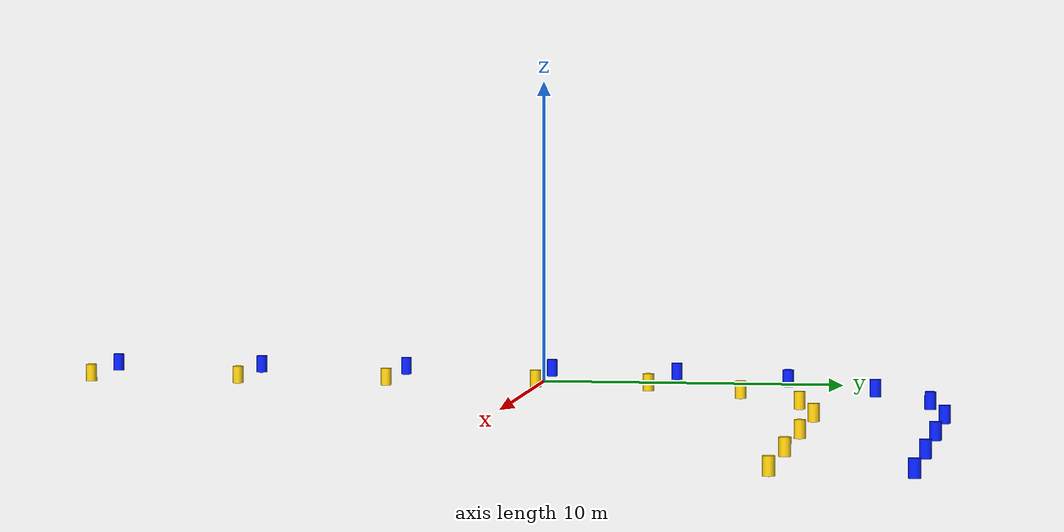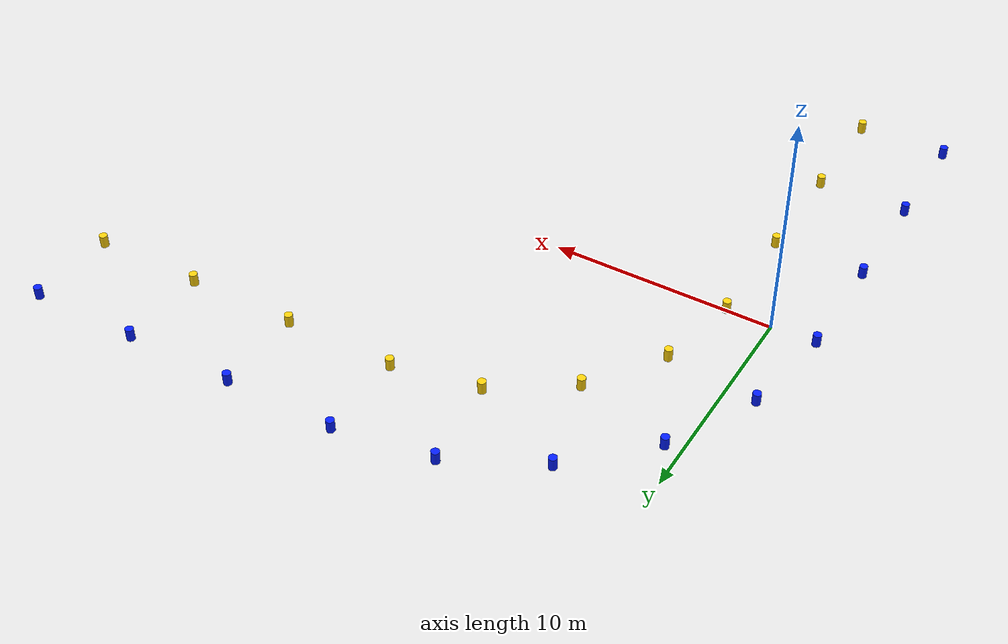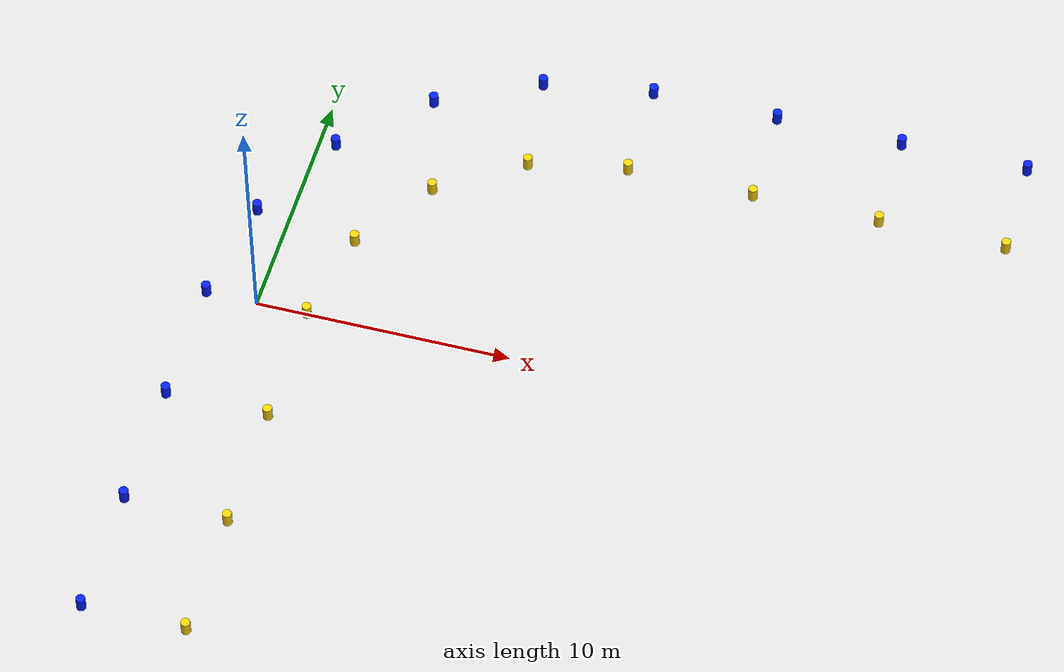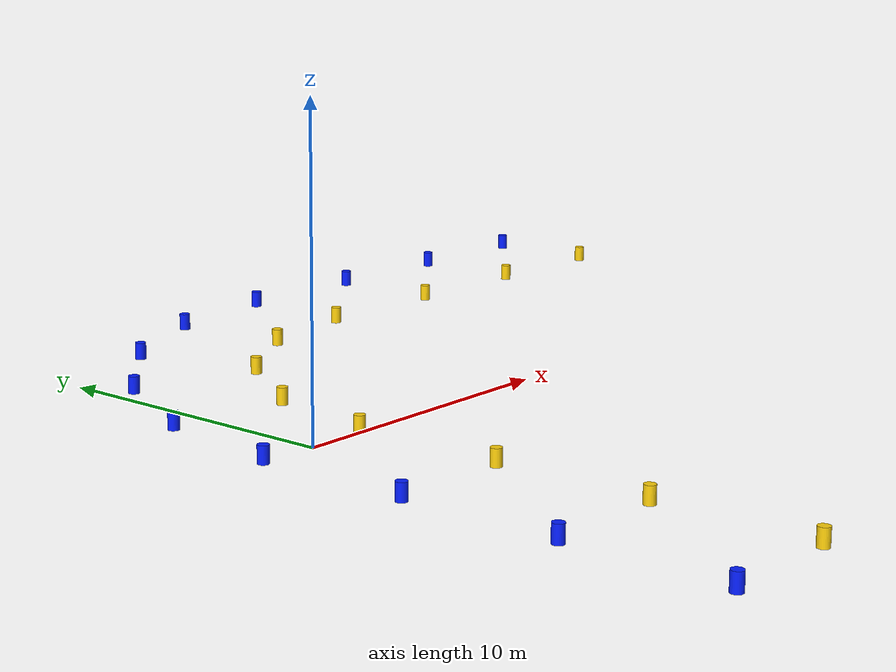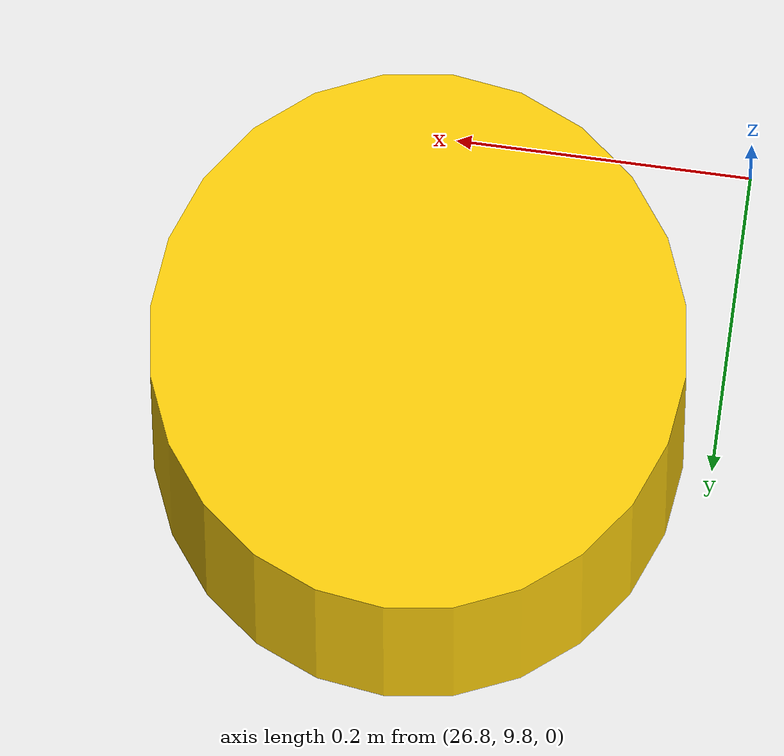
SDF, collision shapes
<?xml version='1.0'?>
<sdf version='1.9'>
  <model name='shixi'>

    <include>
      <pose>-2.0 -15.0 0 0 0 0</pose>
      <uri>model://blue_cone</uri>
      <name>blue_cone_0</name>
    </include>
    <include>
      <pose>2.0 -15.0 0 0 0 0</pose>
      <uri>model://yellow_cone</uri>
      <name>yellow_cone_0</name>
    </include>

    <include>
      <pose>-2.0 -10.0 0 0 0 0</pose>
      <uri>model://blue_cone</uri>
      <name>blue_cone_1</name>
    </include>
    <include>
      <pose>2.0 -10.0 0 0 0 0</pose>
      <uri>model://yellow_cone</uri>
      <name>yellow_cone_1</name>
    </include>

    <include>
      <pose>-2.0 -5.0 0 0 0 0</pose>
      <uri>model://blue_cone</uri>
      <name>blue_cone_2</name>
    </include>
    <include>
      <pose>2.0 -5.0 0 0 0 0</pose>
      <uri>model://yellow_cone</uri>
      <name>yellow_cone_2</name>
    </include>

    <include>
      <pose>-2.0 0.0 0 0 0 0</pose>
      <uri>model://blue_cone</uri>
      <name>blue_cone_3</name>
    </include>
    <include>
      <pose>2.0 0.0 0 0 0 0</pose>
      <uri>model://yellow_cone</uri>
      <name>yellow_cone_3</name>
    </include>

    <include>
      <pose>-1.31 4.32 0 0 0 0</pose>
      <uri>model://blue_cone</uri>
      <name>blue_cone_4</name>
    </include>
    <include>
      <pose>0.68 8.23 0 0 0 0</pose>
      <uri>model://blue_cone</uri>
      <name>blue_cone_5</name>
    </include>
    <include>
      <pose>3.77 11.32 0 0 0 0</pose>
      <uri>model://blue_cone</uri>
      <name>blue_cone_6</name>
    </include>
    <include>
      <pose>7.68 13.31 0 0 0 0</pose>
      <uri>model://blue_cone</uri>
      <name>blue_cone_7</name>
    </include>
    <include>
      <pose>12.0 14.0 0 0 0 0</pose>
      <uri>model://blue_cone</uri>
      <name>blue_cone_8</name>
    </include>

    <include>
      <pose>2.76 3.83 0 0 0 0</pose>
      <uri>model://yellow_cone</uri>
      <name>yellow_cone_4</name>
    </include>
    <include>
      <pose>4.93 7.07 0 0 0 0</pose>
      <uri>model://yellow_cone</uri>
      <name>yellow_cone_5</name>
    </include>
    <include>
      <pose>8.17 9.24 0 0 0 0</pose>
      <uri>model://yellow_cone</uri>
      <name>yellow_cone_6</name>
    </include>
    <include>
      <pose>12.0 10.0 0 0 0 0</pose>
      <uri>model://yellow_cone</uri>
      <name>yellow_cone_7</name>
    </include>

    <include>
      <pose>17.0 14.0 0 0 0 0</pose>
      <uri>model://blue_cone</uri>
      <name>blue_cone_9</name>
    </include>
    <include>
      <pose>17.0 10.0 0 0 0 0</pose>
      <uri>model://yellow_cone</uri>
      <name>yellow_cone_8</name>
    </include>

    <include>
      <pose>22.0 14.0 0 0 0 0</pose>
      <uri>model://blue_cone</uri>
      <name>blue_cone_10</name>
    </include>
    <include>
      <pose>22.0 10.0 0 0 0 0</pose>
      <uri>model://yellow_cone</uri>
      <name>yellow_cone_9</name>
    </include>

    <include>
      <pose>27.0 14.0 0 0 0 0</pose>
      <uri>model://blue_cone</uri>
      <name>blue_cone_11</name>
    </include>
    <include>
      <pose>27.0 10.0 0 0 0 0</pose>
      <uri>model://yellow_cone</uri>
      <name>yellow_cone_10</name>
    </include>

  </model>
</sdf>

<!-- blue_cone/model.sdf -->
<sdf version='1.9'>
  <model name='blue_cone'>
    <static>true</static>
    <link name='link'>
      <pose>0 0 0 0 0 0</pose>
      <inertial>
        <inertia>
          <ixx>0.0016</ixx>
          <ixy>0</ixy>
          <ixz>0</ixz>
          <iyy>0.0016</iyy>
          <iyz>0</iyz>
          <izz>0.0010</izz>
        </inertia>
        <mass>0.45</mass>
      </inertial>
      <visual name='visual'>
        <pose>0 0 0.152 0 0 0</pose>
        <geometry>
          <mesh>
            <uri>model://blue_cone/meshes/cone_blue.dae</uri>
          </mesh>
        </geometry>
        <material>
          <ambient>0.02 0.08 0.8 1</ambient>
          <diffuse>0.02 0.12 1 1</diffuse>
        </material>
        <cast_shadows>1</cast_shadows>
      </visual>
      <collision name='collision'>
        <pose>0 0 0.28 0 0 0</pose>
        <max_contacts>3</max_contacts>
        <geometry>
          <cylinder>
            <radius>0.18</radius>
            <length>0.56</length>
          </cylinder>
        </geometry>
        <laser_retro>20.0</laser_retro>
      </collision>
    </link>
  </model>
</sdf>

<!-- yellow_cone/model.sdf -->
<sdf version='1.9'>
  <model name='yellow_cone'>
    <static>true</static>
    <link name='link'>
      <pose>0 0 0 0 0 0</pose>
      <inertial>
        <inertia>
          <ixx>0.0016</ixx>
          <ixy>0</ixy>
          <ixz>0</ixz>
          <iyy>0.0016</iyy>
          <iyz>0</iyz>
          <izz>0.0010</izz>
        </inertia>
        <mass>0.45</mass>
      </inertial>
      <visual name='visual'>
        <pose>0 0 0.152 0 0 0</pose>
        <geometry>
          <mesh>
            <uri>model://yellow_cone/meshes/cone_yellow.dae</uri>
          </mesh>
        </geometry>
        <material>
          <ambient>0.8 0.62 0.02 1</ambient>
          <diffuse>1 0.82 0.04 1</diffuse>
        </material>
        <cast_shadows>1</cast_shadows>
      </visual>
      <collision name='collision'>
        <pose>0 0 0.28 0 0 0</pose>
        <max_contacts>3</max_contacts>
        <geometry>
          <cylinder>
            <radius>0.18</radius>
            <length>0.56</length>
          </cylinder>
        </geometry>
        <laser_retro>20.0</laser_retro>
      </collision>
    </link>
  </model>
</sdf>
